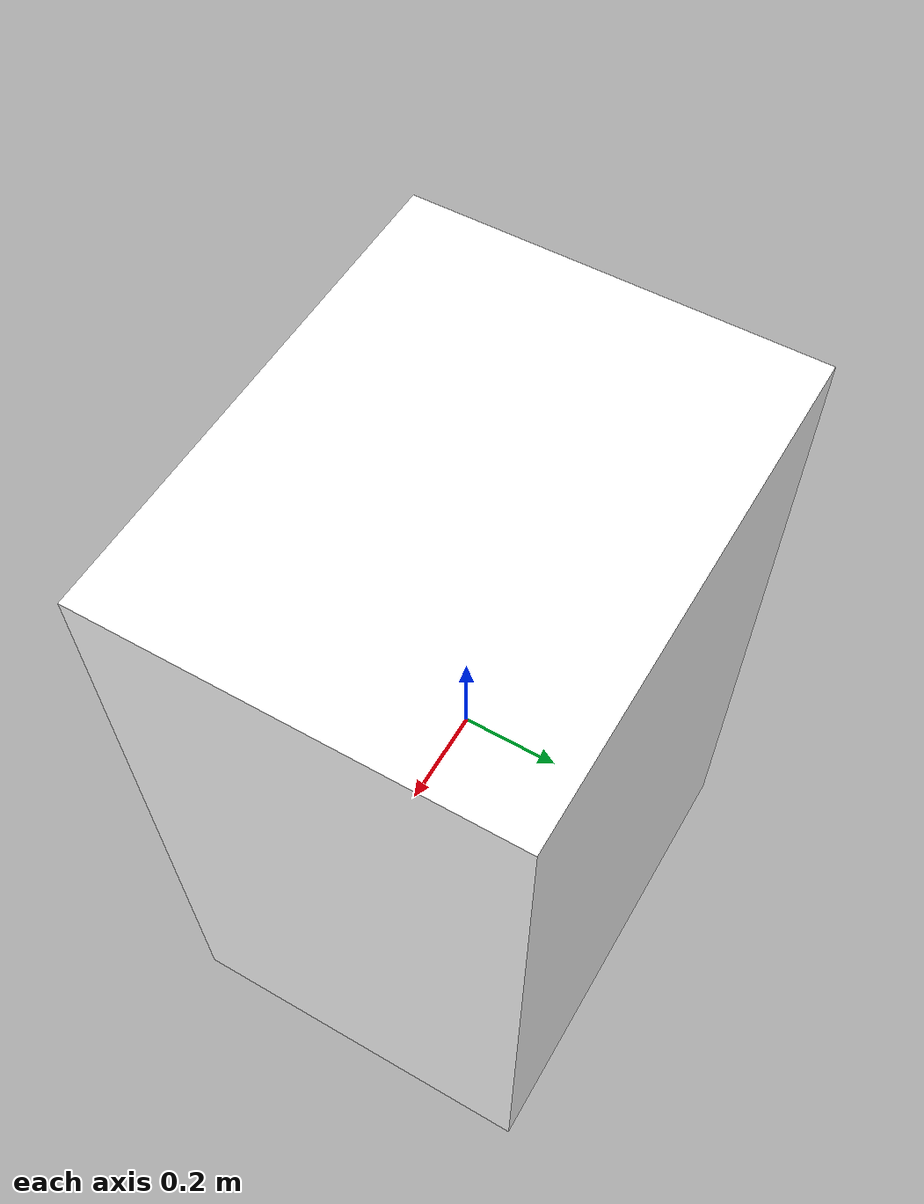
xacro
<?xml version="1.0"?>
<robot name="mushroom_incubator" xmlns:xacro="http://www.ros.org/wiki/xacro">
    <!-- Material definitions -->
    <material name="white">
        <color rgba="1 1 1 1"/>
    </material>
    <material name="gray">
        <color rgba="0.5 0.5 0.5 1"/>
    </material>

    <!-- Base link (incubator chamber) -->
    <link name="base_link">
        <visual>
            <geometry>
                <box size="1.0 0.8 1.5"/> <!-- Width, Depth, Height in meters -->
            </geometry>
            <material name="white"/>
        </visual>
        <collision>
            <geometry>
                <box size="1.0 0.8 1.5"/>
            </geometry>
        </collision>
        <inertial>
            <mass value="50.0"/>
            <inertia ixx="16.67" ixy="0.0" ixz="0.0"
                     iyy="16.67" iyz="0.0" izz="16.67"/>
        </inertial>
    </link>

    <!-- Temperature sensor -->
    <link name="temp_sensor">
        <visual>
            <geometry>
                <cylinder radius="0.02" length="0.05"/>
            </geometry>
            <material name="gray"/>
        </visual>
    </link>

    <joint name="temp_sensor_joint" type="fixed">
        <parent link="base_link"/>
        <child link="temp_sensor"/>
        <origin xyz="0 0 0.5"/> <!-- Positioned in the middle of the chamber -->
    </joint>

    <!-- Gazebo plugin for thermal simulation -->
    <gazebo>
        <plugin name="thermal_plugin" filename="libic_thermal_plugin.so">
            <update_rate>10.0</update_rate>
            <temperature_topic>temperature</temperature_topic>
            <thermal_mass>50.0</thermal_mass>
            <thermal_conductivity>0.024</thermal_conductivity> <!-- W/(m·K) for air -->
            <ambient_temperature>20.0</ambient_temperature>
            <heater_power>1000.0</heater_power> <!-- Watts -->
            <cooler_power>-1000.0</cooler_power> <!-- Watts -->
        </plugin>
    </gazebo>
</robot>
